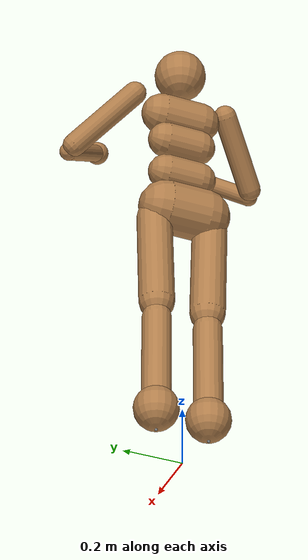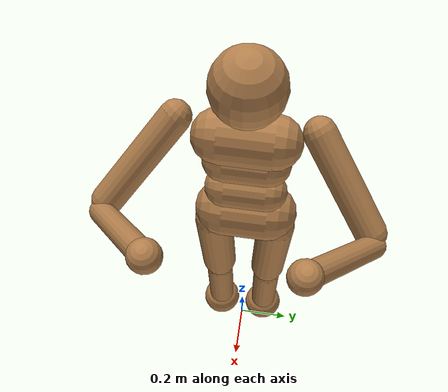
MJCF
<mujoco model="velocity_humanoid">
  <default>
    <default class="humanoid">
      <geom type="capsule" material="body"/>
    </default>
    <default class="visual">
      <geom group="2" density="0" contype="0" conaffinity="0"/>
    </default>
    <joint armature="1" damping="1" limited="true"/>
    <motor ctrllimited="true" ctrlrange="-.4 .4"/>
  </default>

  <worldbody>
    <!-- Humanoid -->
    <body name="humanoid" childclass="humanoid" pos="0 0 1.40">
      <light pos="0 0 2" mode="trackcom"/>
      <site name="imu" quat="1.0 0.0 0.0 0.0" pos="0.0 0.0 0.0" />
      <camera name="default" mode="trackcom" pos="-3.022 0.677 0.067" xyaxes="-0.207 -0.978 -0.000 0.171 -0.036 0.985"/>
      <site name="humanoid" size="0.01" pos="0 0 0"/>
      <joint name="humanoid_root" type="free" armature="0" damping="0" limited="false" pos="0 0 0" stiffness="0"/>
      <geom name="humanoid_torso" fromto="0 -.07 0 0 .07 0" size="0.07" type="capsule"/>
      <geom name="humanoid_head" pos="0 0 .19" size=".09" type="sphere"/>
      <geom name="humanoid_uwaist" fromto="-.01 -.06 -.12 -.01 .06 -.12" size="0.06" type="capsule"/>
      <body name="humanoid_lwaist" pos="-.01 0 -0.260" quat="1.000 0 -0.002 0">
        <geom name="humanoid_lwaist" fromto="0 -.06 0 0 .06 0" size="0.06" type="capsule"/>
        <joint name="humanoid_abdomen_z" armature="0.02" axis="0 0 1" damping="5" pos="0 0 0.065" range="-45 45" stiffness="20" type="hinge"/>
        <joint name="humanoid_abdomen_y" armature="0.02" axis="0 1 0" damping="5" pos="0 0 0.065" range="-75 30" stiffness="10" type="hinge"/>
        <body name="humanoid_pelvis" pos="0 0 -0.165" quat="1.000 0 -0.002 0">
          <joint name="humanoid_abdomen_x" armature="0.02" axis="1 0 0" damping="5" pos="0 0 0.1" range="-35 35" stiffness="10" type="hinge"/>
          <geom name="humanoid_butt" fromto="-.02 -.07 0 -.02 .07 0" size="0.09" type="capsule"/>
          <body name="humanoid_right_thigh" pos="0 -0.1 -0.04">
            <joint name="humanoid_right_hip_x" armature="0.01" axis="1 0 0" damping="5" pos="0 0 0" range="-25 5" stiffness="10" type="hinge"/>
            <joint name="humanoid_right_hip_z" armature="0.01" axis="0 0 1" damping="5" pos="0 0 0" range="-60 35" stiffness="10" type="hinge"/>
            <joint name="humanoid_right_hip_y" armature="0.0080" axis="0 1 0" damping="5" pos="0 0 0" range="-110 20" stiffness="20" type="hinge"/>
            <geom name="humanoid_right_thigh" fromto="0 0 0 0 0.01 -.34" size="0.06" type="capsule"/>
            <body name="humanoid_right_shin" pos="0 0.01 -0.403">
              <joint name="humanoid_right_knee" armature="0.0060" axis="0 -1 0" pos="0 0 .02" range="-160 -2" type="hinge"/>
              <geom name="humanoid_right_shin" fromto="0 0 0 0 0 -.3" size="0.049" type="capsule"/>
              <body name="humanoid_right_foot" pos="0 0 -0.45">
                <geom name="humanoid_right_foot" pos="0 0 0.1" size="0.075" type="sphere"/>
                <site name="humanoid_right_foot" pos="0 0 0.02"/>
              </body>
            </body>
          </body>
          <body name="humanoid_left_thigh" pos="0 0.1 -0.04">
            <joint name="humanoid_left_hip_x" armature="0.01" axis="-1 0 0" damping="5" pos="0 0 0" range="-25 5" stiffness="10" type="hinge"/>
            <joint name="humanoid_left_hip_z" armature="0.01" axis="0 0 -1" damping="5" pos="0 0 0" range="-60 35" stiffness="10" type="hinge"/>
            <joint name="humanoid_left_hip_y" armature="0.01" axis="0 1 0" damping="5" pos="0 0 0" range="-110 20" stiffness="20" type="hinge"/>
            <geom name="humanoid_left_thigh" fromto="0 0 0 0 -0.01 -.34" size="0.06" type="capsule"/>
            <body name="humanoid_left_shin" pos="0 -0.01 -0.403">
              <joint name="humanoid_left_knee" armature="0.0060" axis="0 -1 0" pos="0 0 .02" range="-160 -2" stiffness="1" type="hinge"/>
              <geom name="humanoid_left_shin" fromto="0 0 0 0 0 -.3" size="0.049" type="capsule"/>
              <body name="humanoid_left_foot" pos="0 0 -0.45">
                <geom name="humanoid_left_foot" type="sphere" size="0.075" pos="0 0 0.1"/>
                <site name="humanoid_left_foot" pos="0 0 0.020"/>
              </body>
            </body>
          </body>
        </body>
      </body>
      <body name="humanoid_right_upper_arm" pos="0 -0.17 0.06">
        <joint name="humanoid_right_shoulder1" armature="0.0068" axis="2 1 1" pos="0 0 0" range="-85 60" stiffness="1" type="hinge"/>
        <joint name="humanoid_right_shoulder2" armature="0.0051" axis="0 -1 1" pos="0 0 0" range="-85 60" stiffness="1" type="hinge"/>
        <geom name="humanoid_right_uarm" fromto="0 0 0 .16 -.16 -.16" size="0.04 0.16" type="capsule"/>
        <body name="humanoid_right_lower_arm" pos=".18 -.18 -.18">
          <joint name="humanoid_right_elbow" armature="0.0028" axis="0 -1 1" pos="0 0 0" range="-90 50" stiffness="0" type="hinge"/>
          <geom name="humanoid_right_larm" fromto="0.01 0.01 0.01 .17 .17 .17" size="0.031" type="capsule"/>
          <geom name="humanoid_right_hand" pos=".18 .18 .18" size="0.04" type="sphere"/>
        </body>
      </body>
      <body name="humanoid_left_upper_arm" pos="0 0.17 0.06">
        <joint name="humanoid_left_shoulder1" armature="0.0068" axis="2 -1 1" pos="0 0 0" range="-60 85" stiffness="1" type="hinge"/>
        <joint name="humanoid_left_shoulder2" armature="0.0051" axis="0 1 1" pos="0 0 0" range="-60 85" stiffness="1" type="hinge"/>
        <geom name="humanoid_left_uarm" fromto="0 0 0 .16 .16 -.16" size="0.04 0.16" type="capsule"/>
        <body name="humanoid_left_lower_arm" pos=".18 .18 -.18">
          <joint name="humanoid_left_elbow" armature="0.0028" axis="0 -1 -1" pos="0 0 0" range="-90 50" stiffness="0" type="hinge"/>
          <geom name="humanoid_left_larm" fromto="0.01 -0.01 0.01 .17 -.17 .17" size="0.031" type="capsule"/>
          <geom name="humanoid_left_hand" pos=".18 -.18 .18" size="0.04" type="sphere"/>
        </body>
      </body>
    </body>
  </worldbody>

  <sensor>
    <gyro name="gyro" site="imu" noise="0.01" />
    <accelerometer name="accelerometer" site="imu" noise="0.01" />
    <velocimeter name="local_linvel" site="imu" />
    <frameangvel name="global_angvel" objtype="site" objname="imu" />
    <framelinvel name="global_linvel" objtype="site" objname="imu" />
    <framezaxis name="gravity" objtype="site" objname="imu"/>
  </sensor>

  <actuator>
    <motor gear="100" joint="humanoid_abdomen_y" name="humanoid_abdomen_y"/>
    <motor gear="100" joint="humanoid_abdomen_z" name="humanoid_abdomen_z"/>
    <motor gear="100" joint="humanoid_abdomen_x" name="humanoid_abdomen_x"/>
    <motor gear="100" joint="humanoid_right_hip_x" name="humanoid_right_hip_x"/>
    <motor gear="100" joint="humanoid_right_hip_z" name="humanoid_right_hip_z"/>
    <motor gear="300" joint="humanoid_right_hip_y" name="humanoid_right_hip_y"/>
    <motor gear="200" joint="humanoid_right_knee" name="humanoid_right_knee"/>
    <motor gear="100" joint="humanoid_left_hip_x" name="humanoid_left_hip_x"/>
    <motor gear="100" joint="humanoid_left_hip_z" name="humanoid_left_hip_z"/>
    <motor gear="300" joint="humanoid_left_hip_y" name="humanoid_left_hip_y"/>
    <motor gear="200" joint="humanoid_left_knee" name="humanoid_left_knee"/>
    <motor gear="25" joint="humanoid_right_shoulder1" name="humanoid_right_shoulder1"/>
    <motor gear="25" joint="humanoid_right_shoulder2" name="humanoid_right_shoulder2"/>
    <motor gear="25" joint="humanoid_right_elbow" name="humanoid_right_elbow"/>
    <motor gear="25" joint="humanoid_left_shoulder1" name="humanoid_left_shoulder1"/>
    <motor gear="25" joint="humanoid_left_shoulder2" name="humanoid_left_shoulder2"/>
    <motor gear="25" joint="humanoid_left_elbow" name="humanoid_left_elbow"/>
  </actuator>

  <asset>
    <material name="body" rgba=".7 .5 .3 1" specular="0.9" shininess="0.8"/>
  </asset>
</mujoco>
